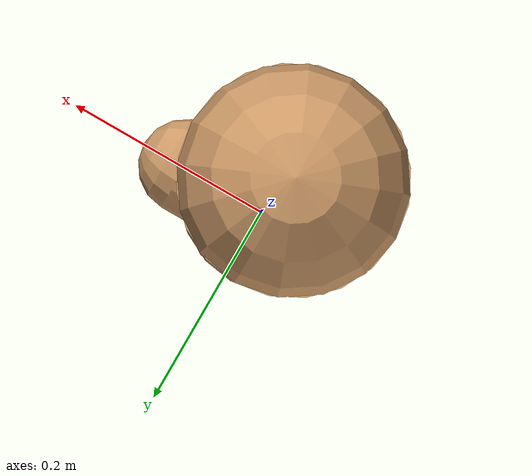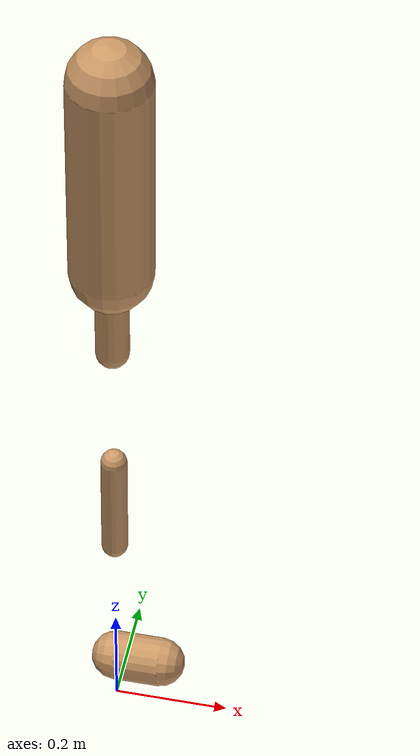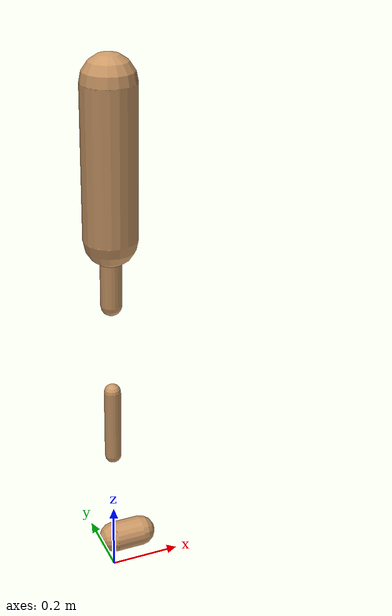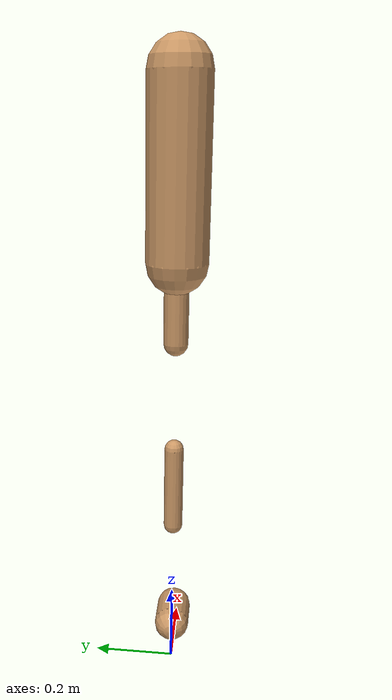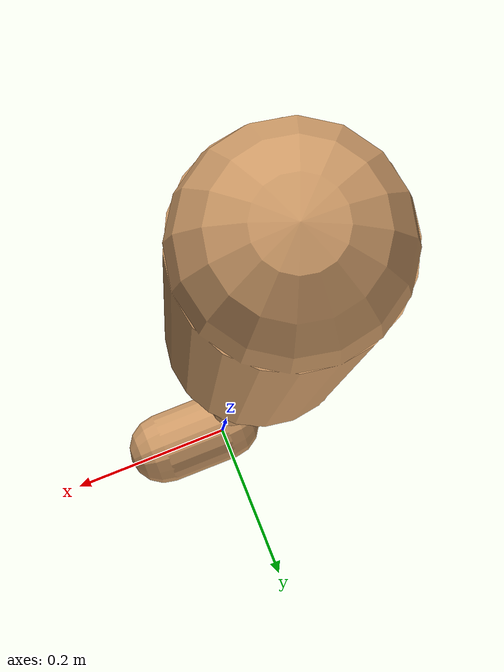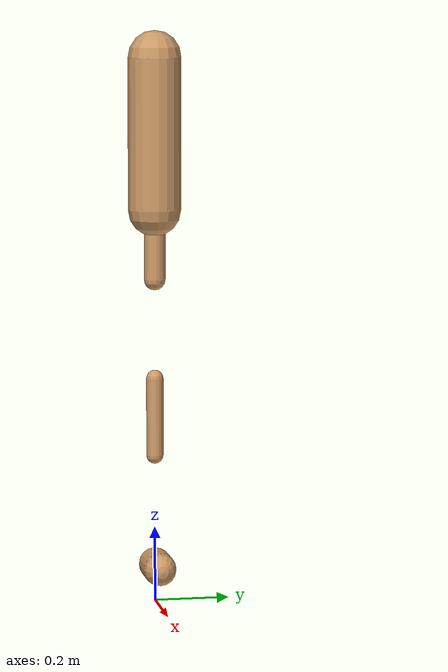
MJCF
<mujoco model="walker2d">
  <compiler angle="degree" coordinate="global" inertiafromgeom="true" />
  <default>
    <joint armature="0.01" damping=".1" limited="true" />
    <geom conaffinity="0" condim="3" contype="1" density="1000" friction="0.8 .1 .1" rgba="0.8 0.6 .4 1" />
  </default>
  <option integrator="RK4" timestep="0.002" />
  <worldbody>

    <body name="torso" pos="0 0 -0.5590727296610173">
      <joint armature="0" axis="1 0 0" damping="0" limited="false" name="ignorex" pos="0 0 0" stiffness="0" type="slide" />
      <joint armature="0" axis="0 0 1" damping="0" limited="false" name="ignorez" pos="0 0 0" ref="1.25" stiffness="0" type="slide" />
      <joint armature="0" axis="0 1 0" damping="0" limited="false" name="ignorey" pos="0 0 0" stiffness="0" type="hinge" />
      <geom fromto="0 0 1.45 0 0 1.05" name="torso_geom" size="0.070913800924835" type="capsule" />
      <body name="thigh">
        <joint axis="0 -1 0" name="thigh_joint" pos="0 0 1.05" range="-150 0" type="hinge" />
        <geom fromto="0.0 0.0 1.05 0.0 0.0 0.8648239245762714" name="thigh_geom" size="0.028635175972847933" type="capsule" />
        <body name="leg" pos="0.0 0.0 0.26482392457627146">
          <joint axis="0 -1 0" name="leg_joint" pos="0 0 0.6" range="-150 0" type="hinge" />
          <geom fromto="0.0 0.0 0.6 0.0 0.0 0.3942488050847459" name="leg_geom" size="0.022908140778278345" type="capsule" />
          <body name="foot" pos="0.0 0.0 0.29424880508474593">
            <joint axis="0 -1 0" name="foot_joint" pos="0 0 0.1" range="-45 45" type="hinge" />
            <geom fromto="0.0 0.0 0.1 0.08094207772477342 0.0 0.1" name="foot_geom" size="0.043342548390599644" type="capsule" />
          </body>
        </body>
      </body>

      <body name="thigh_left">
        <joint axis="0 -1 0" name="thigh_left_joint" pos="0 0 1.05" range="-150 0" type="hinge" />
        <geom fromto="0.0 0.0 1.05 0.0 0.0 0.8648239245762714" name="thigh_left_geom" rgba=".7 .3 .6 1" size="0.028635175972847933" type="capsule" />
        <body name="leg_left" pos="0.0 0.0 0.26482392457627146">
          <joint axis="0 -1 0" name="leg_left_joint" pos="0 0 0.6" range="-150 0" type="hinge" />
          <geom fromto="0.0 0.0 0.6 0.0 0.0 0.3942488050847459" name="leg_left_geom" rgba=".7 .3 .6 1" size="0.022908140778278345" type="capsule" />
          <body name="foot_left" pos="0.0 0.0 0.29424880508474593">
            <joint axis="0 -1 0" name="foot_left_joint" pos="0 0 0.1" range="-45 45" type="hinge" />
            <geom fromto="0.0 0.0 0.1 0.08094207772477342 0.0 0.1" name="foot_left_geom" rgba=".7 .3 .6 1" size="0.043342548390599644" type="capsule" />
          </body>
        </body>
      </body>
    </body>
  </worldbody>
  <actuator>

    <motor ctrllimited="true" ctrlrange="-1.0 1.0" gear="100" joint="thigh_joint" />
    <motor ctrllimited="true" ctrlrange="-1.0 1.0" gear="100" joint="leg_joint" />
    <motor ctrllimited="true" ctrlrange="-1.0 1.0" gear="100" joint="foot_joint" />
    <motor ctrllimited="true" ctrlrange="-1.0 1.0" gear="100" joint="thigh_left_joint" />
    <motor ctrllimited="true" ctrlrange="-1.0 1.0" gear="100" joint="leg_left_joint" />
    <motor ctrllimited="true" ctrlrange="-1.0 1.0" gear="100" joint="foot_left_joint" />

  </actuator>
</mujoco>
